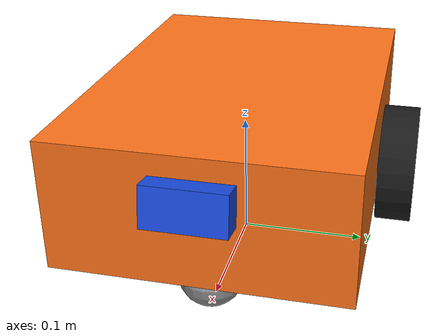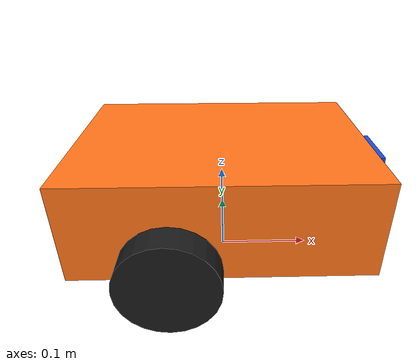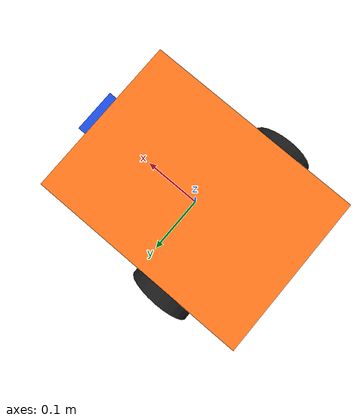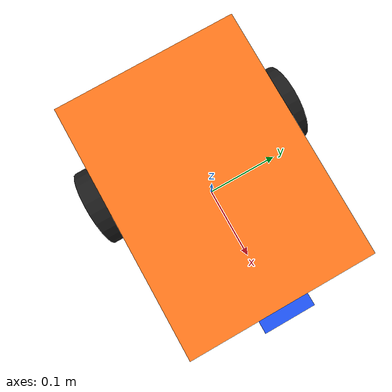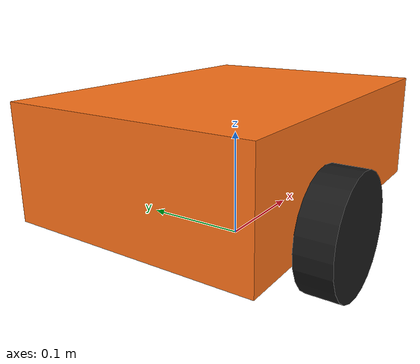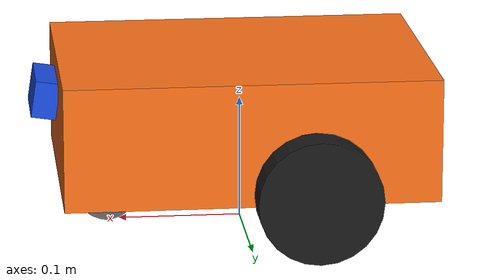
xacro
<?xml version="1.0"?>
<!-- Seeker: a box-shaped robot with two drive wheels, a front ball caster and a camera. -->
<robot name="seeker" xmlns:xacro="http://www.ros.org/wiki/xacro">

  <xacro:property name="wheel_radius" value="0.05"/>
  <xacro:property name="wheel_separation" value="0.25"/>

  <!-- Inertia of a solid box / cylinder (physics needs mass and inertia on every link) -->
  <xacro:macro name="box_inertia" params="m x y z">
    <inertial>
      <mass value="${m}"/>
      <inertia ixx="${m*(y*y+z*z)/12}" iyy="${m*(x*x+z*z)/12}" izz="${m*(x*x+y*y)/12}"
               ixy="0" ixz="0" iyz="0"/>
    </inertial>
  </xacro:macro>

  <xacro:macro name="cylinder_inertia" params="m r h">
    <inertial>
      <origin rpy="${pi/2} 0 0"/>
      <mass value="${m}"/>
      <inertia ixx="${m*(3*r*r+h*h)/12}" iyy="${m*(3*r*r+h*h)/12}" izz="${m*r*r/2}"
               ixy="0" ixz="0" iyz="0"/>
    </inertial>
  </xacro:macro>

  <!-- base_footprint: point on the ground under the robot (navigation tools expect it) -->
  <link name="base_footprint"/>

  <joint name="base_joint" type="fixed">
    <parent link="base_footprint"/>
    <child link="base_link"/>
    <origin xyz="0 0 ${wheel_radius}"/>
  </joint>

  <!-- Body: 30 x 22 x 10 cm -->
  <link name="base_link">
    <visual>
      <origin xyz="0 0 0.04"/>
      <geometry><box size="0.30 0.22 0.10"/></geometry>
      <material name="orange"><color rgba="1 0.45 0.1 1"/></material>
    </visual>
    <collision>
      <origin xyz="0 0 0.04"/>
      <geometry><box size="0.30 0.22 0.10"/></geometry>
    </collision>
    <xacro:box_inertia m="2.0" x="0.30" y="0.22" z="0.10"/>
  </link>

  <!-- Two drive wheels (side: left/right, y: +1 or -1) -->
  <xacro:macro name="wheel" params="side y">
    <link name="${side}_wheel">
      <visual>
        <origin rpy="${pi/2} 0 0"/>
        <geometry><cylinder radius="${wheel_radius}" length="0.03"/></geometry>
        <material name="black"><color rgba="0.1 0.1 0.1 1"/></material>
      </visual>
      <collision>
        <origin rpy="${pi/2} 0 0"/>
        <geometry><cylinder radius="${wheel_radius}" length="0.03"/></geometry>
      </collision>
      <xacro:cylinder_inertia m="0.2" r="${wheel_radius}" h="0.03"/>
    </link>

    <joint name="${side}_wheel_joint" type="continuous">
      <parent link="base_link"/>
      <child link="${side}_wheel"/>
      <origin xyz="-0.05 ${y * wheel_separation / 2} 0"/>
      <axis xyz="0 1 0"/>
    </joint>
  </xacro:macro>

  <xacro:wheel side="left" y="1"/>
  <xacro:wheel side="right" y="-1"/>

  <!-- Front ball caster, touching the ground -->
  <link name="caster">
    <visual>
      <geometry><sphere radius="0.025"/></geometry>
      <material name="grey"><color rgba="0.6 0.6 0.6 1"/></material>
    </visual>
    <collision>
      <geometry><sphere radius="0.025"/></geometry>
    </collision>
    <xacro:box_inertia m="0.05" x="0.05" y="0.05" z="0.05"/>
  </link>

  <joint name="caster_joint" type="fixed">
    <parent link="base_link"/>
    <child link="caster"/>
    <origin xyz="0.11 0 -0.025"/>
  </joint>

  <!-- Camera on the front, tilted up slightly so tall objects stay in view -->
  <link name="camera_link">
    <visual>
      <geometry><box size="0.02 0.06 0.03"/></geometry>
      <material name="blue"><color rgba="0.1 0.3 0.9 1"/></material>
    </visual>
    <xacro:box_inertia m="0.05" x="0.02" y="0.06" z="0.03"/>
  </link>

  <joint name="camera_joint" type="fixed">
    <parent link="base_link"/>
    <child link="camera_link"/>
    <origin xyz="0.16 0 0.06" rpy="0 -0.15 0"/>
  </joint>

  <!-- Images use a different axis convention (z forward, x right, y down), so give them their own frame -->
  <link name="camera_optical_link"/>

  <joint name="camera_optical_joint" type="fixed">
    <parent link="camera_link"/>
    <child link="camera_optical_link"/>
    <origin rpy="${-pi/2} 0 ${-pi/2}"/>
  </joint>

  <!-- ===== Gazebo ===== -->

  <!-- Frictionless caster so the robot can turn -->
  <gazebo reference="caster">
    <mu1>0.0</mu1>
    <mu2>0.0</mu2>
  </gazebo>

  <!-- Camera: 640x480 at 15 fps, published on /camera/image_raw -->
  <gazebo reference="camera_link">
    <sensor name="camera" type="camera">
      <update_rate>15</update_rate>
      <topic>camera/image_raw</topic>
      <gz_frame_id>camera_optical_link</gz_frame_id>
      <camera>
        <horizontal_fov>1.047</horizontal_fov>
        <image><width>640</width><height>480</height></image>
        <clip><near>0.05</near><far>50</far></clip>
      </camera>
    </sensor>
  </gazebo>

  <gazebo>
    <!-- Drives the wheels from /cmd_vel; publishes /odom and the odom -> base_footprint transform -->
    <plugin filename="gz-sim-diff-drive-system" name="gz::sim::systems::DiffDrive">
      <left_joint>left_wheel_joint</left_joint>
      <right_joint>right_wheel_joint</right_joint>
      <wheel_separation>${wheel_separation}</wheel_separation>
      <wheel_radius>${wheel_radius}</wheel_radius>
      <topic>cmd_vel</topic>
      <odom_topic>odom</odom_topic>
      <tf_topic>tf</tf_topic>
      <frame_id>odom</frame_id>
      <child_frame_id>base_footprint</child_frame_id>
    </plugin>

    <!-- Publishes wheel angles on /joint_states -->
    <plugin filename="gz-sim-joint-state-publisher-system" name="gz::sim::systems::JointStatePublisher">
      <topic>joint_states</topic>
      <update_rate>50</update_rate>
    </plugin>
  </gazebo>

</robot>
